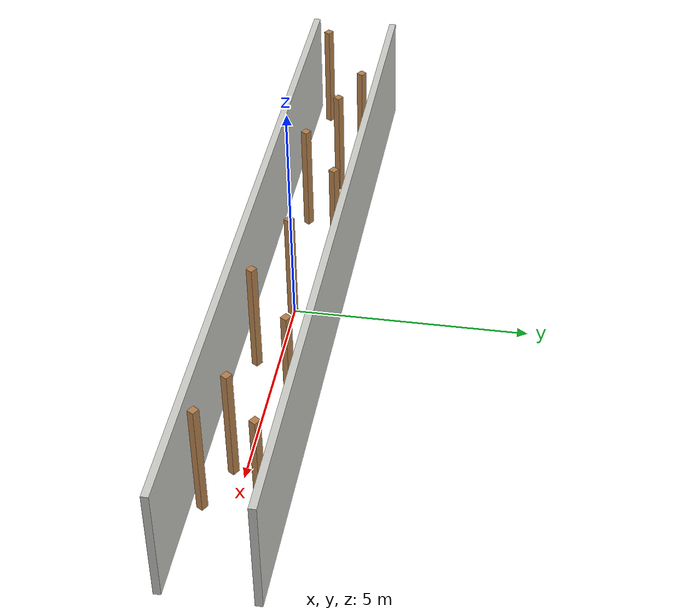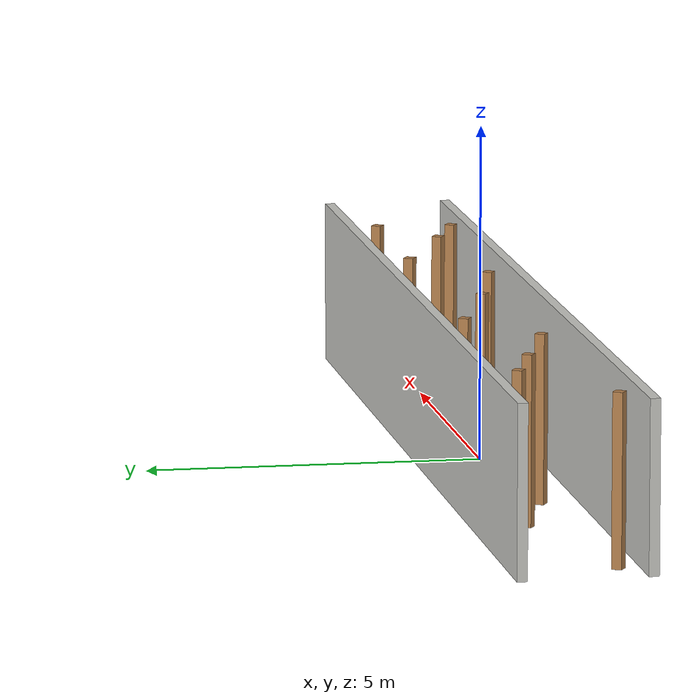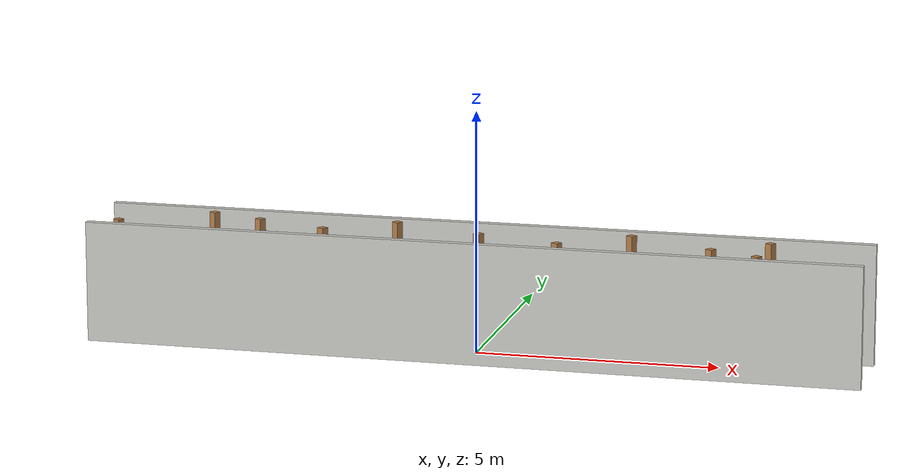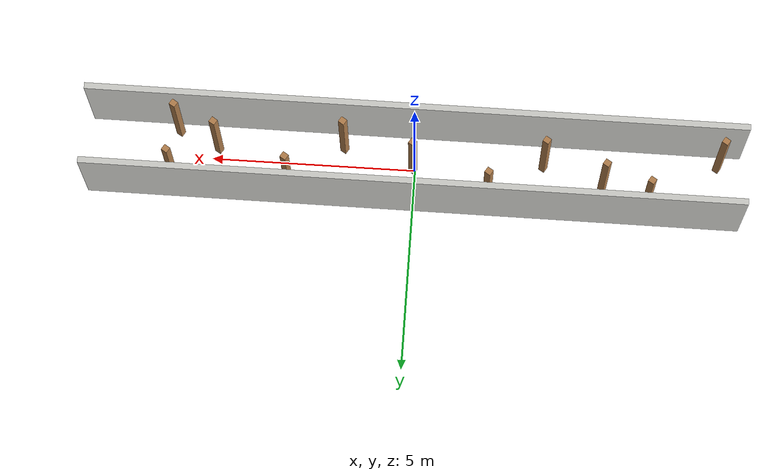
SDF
<?xml version='1.0'?>
<sdf version='1.6'>
  <model name='pole_2m'>
    <link name='Wall_0'>
      <pose frame=''>-0.007783 0.925 0 0 -0 0</pose>
      <self_collide>0</self_collide>
      <enable_wind>0</enable_wind>
      <kinematic>0</kinematic>
      <inertial>
        <inertia>
          <ixx>0</ixx>
          <ixy>0</ixy>
          <ixz>0</ixz>
          <iyy>0</iyy>
          <iyz>0</iyz>
          <izz>0</izz>
        </inertia>
        <mass>0</mass>
        <pose frame=''>0 0 0 0 -0 0</pose>
      </inertial>
      <visual name='Wall_0_Visual'>
        <pose frame=''>0 0 1.25 0 -0 0</pose>
        <geometry>
          <box>
            <size>16.0312 0.15 2.5</size>
          </box>
        </geometry>
        <material>
          <script>
            <uri>file://media/materials/scripts/gazebo.material</uri>
            <name>Gazebo/CeilingTiled</name>
          </script>
          <ambient>1 1 1 1</ambient>
          <shader type='pixel'/>
        </material>
        <meta>
          <layer>0</layer>
        </meta>
        <transparency>0</transparency>
        <cast_shadows>1</cast_shadows>
      </visual>
      <collision name='Wall_0_Collision'>
        <laser_retro>0</laser_retro>
        <max_contacts>10</max_contacts>
        <pose frame=''>0 0 1.25 0 -0 0</pose>
        <geometry>
          <box>
            <size>16.0312 0.15 2.5</size>
          </box>
        </geometry>
        <surface>
          <friction>
            <ode>
              <mu>1</mu>
              <mu2>1</mu2>
              <fdir1>0 0 0</fdir1>
              <slip1>0</slip1>
              <slip2>0</slip2>
            </ode>
            <torsional>
              <coefficient>1</coefficient>
              <patch_radius>0</patch_radius>
              <surface_radius>0</surface_radius>
              <use_patch_radius>1</use_patch_radius>
              <ode>
                <slip>0</slip>
              </ode>
            </torsional>
          </friction>
          <bounce>
            <restitution_coefficient>0</restitution_coefficient>
            <threshold>1e+06</threshold>
          </bounce>
          <contact>
            <collide_without_contact>0</collide_without_contact>
            <collide_without_contact_bitmask>1</collide_without_contact_bitmask>
            <collide_bitmask>1</collide_bitmask>
            <ode>
              <soft_cfm>0</soft_cfm>
              <soft_erp>0.2</soft_erp>
              <kp>1e+13</kp>
              <kd>1</kd>
              <max_vel>0.01</max_vel>
              <min_depth>0</min_depth>
            </ode>
            <bullet>
              <split_impulse>1</split_impulse>
              <split_impulse_penetration_threshold>-0.01</split_impulse_penetration_threshold>
              <soft_cfm>0</soft_cfm>
              <soft_erp>0.2</soft_erp>
              <kp>1e+13</kp>
              <kd>1</kd>
            </bullet>
          </contact>
        </surface>
      </collision>
    </link>
    <link name='Wall_2'>
      <pose frame=''>0.007783 -0.925 0 0 -0 3.14159</pose>
      <self_collide>0</self_collide>
      <enable_wind>0</enable_wind>
      <kinematic>0</kinematic>
      <inertial>
        <inertia>
          <ixx>0</ixx>
          <ixy>0</ixy>
          <ixz>0</ixz>
          <iyy>0</iyy>
          <iyz>0</iyz>
          <izz>0</izz>
        </inertia>
        <mass>0</mass>
        <pose frame=''>0 0 0 0 -0 0</pose>
      </inertial>
      <visual name='Wall_2_Visual'>
        <pose frame=''>0 0 1.25 0 -0 0</pose>
        <geometry>
          <box>
            <size>16.022 0.15 2.5</size>
          </box>
        </geometry>
        <material>
          <script>
            <uri>file://media/materials/scripts/gazebo.material</uri>
            <name>Gazebo/CeilingTiled</name>
          </script>
          <ambient>1 1 1 1</ambient>
          <shader type='pixel'/>
        </material>
        <meta>
          <layer>0</layer>
        </meta>
        <transparency>0</transparency>
        <cast_shadows>1</cast_shadows>
      </visual>
      <collision name='Wall_2_Collision'>
        <laser_retro>0</laser_retro>
        <max_contacts>10</max_contacts>
        <pose frame=''>0 0 1.25 0 -0 0</pose>
        <geometry>
          <box>
            <size>16.022 0.15 2.5</size>
          </box>
        </geometry>
        <surface>
          <friction>
            <ode>
              <mu>1</mu>
              <mu2>1</mu2>
              <fdir1>0 0 0</fdir1>
              <slip1>0</slip1>
              <slip2>0</slip2>
            </ode>
            <torsional>
              <coefficient>1</coefficient>
              <patch_radius>0</patch_radius>
              <surface_radius>0</surface_radius>
              <use_patch_radius>1</use_patch_radius>
              <ode>
                <slip>0</slip>
              </ode>
            </torsional>
          </friction>
          <bounce>
            <restitution_coefficient>0</restitution_coefficient>
            <threshold>1e+06</threshold>
          </bounce>
          <contact>
            <collide_without_contact>0</collide_without_contact>
            <collide_without_contact_bitmask>1</collide_without_contact_bitmask>
            <collide_bitmask>1</collide_bitmask>
            <ode>
              <soft_cfm>0</soft_cfm>
              <soft_erp>0.2</soft_erp>
              <kp>1e+13</kp>
              <kd>1</kd>
              <max_vel>0.01</max_vel>
              <min_depth>0</min_depth>
            </ode>
            <bullet>
              <split_impulse>1</split_impulse>
              <split_impulse_penetration_threshold>-0.01</split_impulse_penetration_threshold>
              <soft_cfm>0</soft_cfm>
              <soft_erp>0.2</soft_erp>
              <kp>1e+13</kp>
              <kd>1</kd>
            </bullet>
          </contact>
        </surface>
      </collision>
    </link>
    <link name='Wall_6'>
      <pose frame=''>-5.71878 0.5395 0 0 0 -0.558599</pose>
      <self_collide>0</self_collide>
      <enable_wind>0</enable_wind>
      <kinematic>0</kinematic>
      <visual name='Wall_6_Visual'>
        <pose frame=''>0 0 1.25 0 -0 0</pose>
        <geometry>
          <box>
            <size>0.16 0.15 2.5</size>
          </box>
        </geometry>
        <material>
          <script>
            <uri>file://media/materials/scripts/gazebo.material</uri>
            <name>Gazebo/Wood</name>
          </script>
          <ambient>1 1 1 1</ambient>
          <shader type='pixel'/>
        </material>
        <meta>
          <layer>0</layer>
        </meta>
        <transparency>0</transparency>
        <cast_shadows>1</cast_shadows>
      </visual>
      <collision name='Wall_6_Collision'>
        <laser_retro>0</laser_retro>
        <max_contacts>10</max_contacts>
        <pose frame=''>0 0 1.25 0 -0 0</pose>
        <geometry>
          <box>
            <size>0.16 0.15 2.5</size>
          </box>
        </geometry>
        <surface>
          <friction>
            <ode>
              <mu>1</mu>
              <mu2>1</mu2>
              <fdir1>0 0 0</fdir1>
              <slip1>0</slip1>
              <slip2>0</slip2>
            </ode>
            <torsional>
              <coefficient>1</coefficient>
              <patch_radius>0</patch_radius>
              <surface_radius>0</surface_radius>
              <use_patch_radius>1</use_patch_radius>
              <ode>
                <slip>0</slip>
              </ode>
            </torsional>
          </friction>
          <bounce>
            <restitution_coefficient>0</restitution_coefficient>
            <threshold>1e+06</threshold>
          </bounce>
          <contact>
            <collide_without_contact>0</collide_without_contact>
            <collide_without_contact_bitmask>1</collide_without_contact_bitmask>
            <collide_bitmask>1</collide_bitmask>
            <ode>
              <soft_cfm>0</soft_cfm>
              <soft_erp>0.2</soft_erp>
              <kp>1e+13</kp>
              <kd>1</kd>
              <max_vel>0.01</max_vel>
              <min_depth>0</min_depth>
            </ode>
            <bullet>
              <split_impulse>1</split_impulse>
              <split_impulse_penetration_threshold>-0.01</split_impulse_penetration_threshold>
              <soft_cfm>0</soft_cfm>
              <soft_erp>0.2</soft_erp>
              <kp>1e+13</kp>
              <kd>1</kd>
            </bullet>
          </contact>
        </surface>
      </collision>
    </link>
    <link name='Wall_6_clone'>
      <pose frame=''>-3.15849 -0.287445 0 0 0 -0.558599</pose>
      <self_collide>0</self_collide>
      <enable_wind>0</enable_wind>
      <kinematic>0</kinematic>
      <visual name='Wall_6_Visual'>
        <pose frame=''>0 0 1.25 0 -0 0</pose>
        <geometry>
          <box>
            <size>0.16 0.15 2.5</size>
          </box>
        </geometry>
        <material>
          <script>
            <uri>file://media/materials/scripts/gazebo.material</uri>
            <name>Gazebo/Wood</name>
          </script>
          <ambient>1 1 1 1</ambient>
          <shader type='pixel'/>
        </material>
        <meta>
          <layer>0</layer>
        </meta>
        <transparency>0</transparency>
        <cast_shadows>1</cast_shadows>
      </visual>
      <collision name='Wall_6_Collision'>
        <laser_retro>0</laser_retro>
        <max_contacts>10</max_contacts>
        <pose frame=''>0 0 1.25 0 -0 0</pose>
        <geometry>
          <box>
            <size>0.16 0.15 2.5</size>
          </box>
        </geometry>
        <surface>
          <friction>
            <ode>
              <mu>1</mu>
              <mu2>1</mu2>
              <fdir1>0 0 0</fdir1>
              <slip1>0</slip1>
              <slip2>0</slip2>
            </ode>
            <torsional>
              <coefficient>1</coefficient>
              <patch_radius>0</patch_radius>
              <surface_radius>0</surface_radius>
              <use_patch_radius>1</use_patch_radius>
              <ode>
                <slip>0</slip>
              </ode>
            </torsional>
          </friction>
          <bounce>
            <restitution_coefficient>0</restitution_coefficient>
            <threshold>1e+06</threshold>
          </bounce>
          <contact>
            <collide_without_contact>0</collide_without_contact>
            <collide_without_contact_bitmask>1</collide_without_contact_bitmask>
            <collide_bitmask>1</collide_bitmask>
            <ode>
              <soft_cfm>0</soft_cfm>
              <soft_erp>0.2</soft_erp>
              <kp>1e+13</kp>
              <kd>1</kd>
              <max_vel>0.01</max_vel>
              <min_depth>0</min_depth>
            </ode>
            <bullet>
              <split_impulse>1</split_impulse>
              <split_impulse_penetration_threshold>-0.01</split_impulse_penetration_threshold>
              <soft_cfm>0</soft_cfm>
              <soft_erp>0.2</soft_erp>
              <kp>1e+13</kp>
              <kd>1</kd>
            </bullet>
          </contact>
        </surface>
      </collision>
    </link>
    <link name='Wall_6_clone_0'>
      <pose frame=''>-1.81482 0.574676 0 0 0 -0.558599</pose>
      <self_collide>0</self_collide>
      <enable_wind>0</enable_wind>
      <kinematic>0</kinematic>
      <visual name='Wall_6_Visual'>
        <pose frame=''>0 0 1.25 0 -0 0</pose>
        <geometry>
          <box>
            <size>0.16 0.15 2.5</size>
          </box>
        </geometry>
        <material>
          <script>
            <uri>file://media/materials/scripts/gazebo.material</uri>
            <name>Gazebo/Wood</name>
          </script>
          <ambient>1 1 1 1</ambient>
          <shader type='pixel'/>
        </material>
        <meta>
          <layer>0</layer>
        </meta>
        <transparency>0</transparency>
        <cast_shadows>1</cast_shadows>
      </visual>
      <collision name='Wall_6_Collision'>
        <laser_retro>0</laser_retro>
        <max_contacts>10</max_contacts>
        <pose frame=''>0 0 1.25 0 -0 0</pose>
        <geometry>
          <box>
            <size>0.16 0.15 2.5</size>
          </box>
        </geometry>
        <surface>
          <friction>
            <ode>
              <mu>1</mu>
              <mu2>1</mu2>
              <fdir1>0 0 0</fdir1>
              <slip1>0</slip1>
              <slip2>0</slip2>
            </ode>
            <torsional>
              <coefficient>1</coefficient>
              <patch_radius>0</patch_radius>
              <surface_radius>0</surface_radius>
              <use_patch_radius>1</use_patch_radius>
              <ode>
                <slip>0</slip>
              </ode>
            </torsional>
          </friction>
          <bounce>
            <restitution_coefficient>0</restitution_coefficient>
            <threshold>1e+06</threshold>
          </bounce>
          <contact>
            <collide_without_contact>0</collide_without_contact>
            <collide_without_contact_bitmask>1</collide_without_contact_bitmask>
            <collide_bitmask>1</collide_bitmask>
            <ode>
              <soft_cfm>0</soft_cfm>
              <soft_erp>0.2</soft_erp>
              <kp>1e+13</kp>
              <kd>1</kd>
              <max_vel>0.01</max_vel>
              <min_depth>0</min_depth>
            </ode>
            <bullet>
              <split_impulse>1</split_impulse>
              <split_impulse_penetration_threshold>-0.01</split_impulse_penetration_threshold>
              <soft_cfm>0</soft_cfm>
              <soft_erp>0.2</soft_erp>
              <kp>1e+13</kp>
              <kd>1</kd>
            </bullet>
          </contact>
        </surface>
      </collision>
    </link>
    <link name='Wall_6_clone_1'>
      <pose frame=''>0.047996 -0.029844 0 0 0 -0.558599</pose>
      <self_collide>0</self_collide>
      <enable_wind>0</enable_wind>
      <kinematic>0</kinematic>
      <visual name='Wall_6_Visual'>
        <pose frame=''>0 0 1.25 0 -0 0</pose>
        <geometry>
          <box>
            <size>0.16 0.15 2.5</size>
          </box>
        </geometry>
        <material>
          <script>
            <uri>file://media/materials/scripts/gazebo.material</uri>
            <name>Gazebo/Wood</name>
          </script>
          <ambient>1 1 1 1</ambient>
          <shader type='pixel'/>
        </material>
        <meta>
          <layer>0</layer>
        </meta>
        <transparency>0</transparency>
        <cast_shadows>1</cast_shadows>
      </visual>
      <collision name='Wall_6_Collision'>
        <laser_retro>0</laser_retro>
        <max_contacts>10</max_contacts>
        <pose frame=''>0 0 1.25 0 -0 0</pose>
        <geometry>
          <box>
            <size>0.16 0.15 2.5</size>
          </box>
        </geometry>
        <surface>
          <friction>
            <ode>
              <mu>1</mu>
              <mu2>1</mu2>
              <fdir1>0 0 0</fdir1>
              <slip1>0</slip1>
              <slip2>0</slip2>
            </ode>
            <torsional>
              <coefficient>1</coefficient>
              <patch_radius>0</patch_radius>
              <surface_radius>0</surface_radius>
              <use_patch_radius>1</use_patch_radius>
              <ode>
                <slip>0</slip>
              </ode>
            </torsional>
          </friction>
          <bounce>
            <restitution_coefficient>0</restitution_coefficient>
            <threshold>1e+06</threshold>
          </bounce>
          <contact>
            <collide_without_contact>0</collide_without_contact>
            <collide_without_contact_bitmask>1</collide_without_contact_bitmask>
            <collide_bitmask>1</collide_bitmask>
            <ode>
              <soft_cfm>0</soft_cfm>
              <soft_erp>0.2</soft_erp>
              <kp>1e+13</kp>
              <kd>1</kd>
              <max_vel>0.01</max_vel>
              <min_depth>0</min_depth>
            </ode>
            <bullet>
              <split_impulse>1</split_impulse>
              <split_impulse_penetration_threshold>-0.01</split_impulse_penetration_threshold>
              <soft_cfm>0</soft_cfm>
              <soft_erp>0.2</soft_erp>
              <kp>1e+13</kp>
              <kd>1</kd>
            </bullet>
          </contact>
        </surface>
      </collision>
    </link>
    <link name='Wall_6_clone_2'>
      <pose frame=''>1.75896 -0.448581 0 0 0 -0.558599</pose>
      <self_collide>0</self_collide>
      <enable_wind>0</enable_wind>
      <kinematic>0</kinematic>
      <visual name='Wall_6_Visual'>
        <pose frame=''>0 0 1.25 0 -0 0</pose>
        <geometry>
          <box>
            <size>0.16 0.15 2.5</size>
          </box>
        </geometry>
        <material>
          <script>
            <uri>file://media/materials/scripts/gazebo.material</uri>
            <name>Gazebo/Wood</name>
          </script>
          <ambient>1 1 1 1</ambient>
          <shader type='pixel'/>
        </material>
        <meta>
          <layer>0</layer>
        </meta>
        <transparency>0</transparency>
        <cast_shadows>1</cast_shadows>
      </visual>
      <collision name='Wall_6_Collision'>
        <laser_retro>0</laser_retro>
        <max_contacts>10</max_contacts>
        <pose frame=''>0 0 1.25 0 -0 0</pose>
        <geometry>
          <box>
            <size>0.16 0.15 2.5</size>
          </box>
        </geometry>
        <surface>
          <friction>
            <ode>
              <mu>1</mu>
              <mu2>1</mu2>
              <fdir1>0 0 0</fdir1>
              <slip1>0</slip1>
              <slip2>0</slip2>
            </ode>
            <torsional>
              <coefficient>1</coefficient>
              <patch_radius>0</patch_radius>
              <surface_radius>0</surface_radius>
              <use_patch_radius>1</use_patch_radius>
              <ode>
                <slip>0</slip>
              </ode>
            </torsional>
          </friction>
          <bounce>
            <restitution_coefficient>0</restitution_coefficient>
            <threshold>1e+06</threshold>
          </bounce>
          <contact>
            <collide_without_contact>0</collide_without_contact>
            <collide_without_contact_bitmask>1</collide_without_contact_bitmask>
            <collide_bitmask>1</collide_bitmask>
            <ode>
              <soft_cfm>0</soft_cfm>
              <soft_erp>0.2</soft_erp>
              <kp>1e+13</kp>
              <kd>1</kd>
              <max_vel>0.01</max_vel>
              <min_depth>0</min_depth>
            </ode>
            <bullet>
              <split_impulse>1</split_impulse>
              <split_impulse_penetration_threshold>-0.01</split_impulse_penetration_threshold>
              <soft_cfm>0</soft_cfm>
              <soft_erp>0.2</soft_erp>
              <kp>1e+13</kp>
              <kd>1</kd>
            </bullet>
          </contact>
        </surface>
      </collision>
    </link>
    <link name='Wall_6_clone_3'>
      <pose frame=''>3.08943 0.513137 0 0 0 -0.558599</pose>
      <self_collide>0</self_collide>
      <enable_wind>0</enable_wind>
      <kinematic>0</kinematic>
      <visual name='Wall_6_Visual'>
        <pose frame=''>0 0 1.25 0 -0 0</pose>
        <geometry>
          <box>
            <size>0.16 0.15 2.5</size>
          </box>
        </geometry>
        <material>
          <script>
            <uri>file://media/materials/scripts/gazebo.material</uri>
            <name>Gazebo/Wood</name>
          </script>
          <ambient>1 1 1 1</ambient>
          <shader type='pixel'/>
        </material>
        <meta>
          <layer>0</layer>
        </meta>
        <transparency>0</transparency>
        <cast_shadows>1</cast_shadows>
      </visual>
      <collision name='Wall_6_Collision'>
        <laser_retro>0</laser_retro>
        <max_contacts>10</max_contacts>
        <pose frame=''>0 0 1.25 0 -0 0</pose>
        <geometry>
          <box>
            <size>0.16 0.15 2.5</size>
          </box>
        </geometry>
        <surface>
          <friction>
            <ode>
              <mu>1</mu>
              <mu2>1</mu2>
              <fdir1>0 0 0</fdir1>
              <slip1>0</slip1>
              <slip2>0</slip2>
            </ode>
            <torsional>
              <coefficient>1</coefficient>
              <patch_radius>0</patch_radius>
              <surface_radius>0</surface_radius>
              <use_patch_radius>1</use_patch_radius>
              <ode>
                <slip>0</slip>
              </ode>
            </torsional>
          </friction>
          <bounce>
            <restitution_coefficient>0</restitution_coefficient>
            <threshold>1e+06</threshold>
          </bounce>
          <contact>
            <collide_without_contact>0</collide_without_contact>
            <collide_without_contact_bitmask>1</collide_without_contact_bitmask>
            <collide_bitmask>1</collide_bitmask>
            <ode>
              <soft_cfm>0</soft_cfm>
              <soft_erp>0.2</soft_erp>
              <kp>1e+13</kp>
              <kd>1</kd>
              <max_vel>0.01</max_vel>
              <min_depth>0</min_depth>
            </ode>
            <bullet>
              <split_impulse>1</split_impulse>
              <split_impulse_penetration_threshold>-0.01</split_impulse_penetration_threshold>
              <soft_cfm>0</soft_cfm>
              <soft_erp>0.2</soft_erp>
              <kp>1e+13</kp>
              <kd>1</kd>
            </bullet>
          </contact>
        </surface>
      </collision>
    </link>
    <link name='Wall_6_clone_4'>
      <pose frame=''>4.85406 -0.243061 0 0 0 -0.558599</pose>
      <self_collide>0</self_collide>
      <enable_wind>0</enable_wind>
      <kinematic>0</kinematic>
      <visual name='Wall_6_Visual'>
        <pose frame=''>0 0 1.25 0 -0 0</pose>
        <geometry>
          <box>
            <size>0.16 0.15 2.5</size>
          </box>
        </geometry>
        <material>
          <script>
            <uri>file://media/materials/scripts/gazebo.material</uri>
            <name>Gazebo/Wood</name>
          </script>
          <ambient>1 1 1 1</ambient>
          <shader type='pixel'/>
        </material>
        <meta>
          <layer>0</layer>
        </meta>
        <transparency>0</transparency>
        <cast_shadows>1</cast_shadows>
      </visual>
      <collision name='Wall_6_Collision'>
        <laser_retro>0</laser_retro>
        <max_contacts>10</max_contacts>
        <pose frame=''>0 0 1.25 0 -0 0</pose>
        <geometry>
          <box>
            <size>0.16 0.15 2.5</size>
          </box>
        </geometry>
        <surface>
          <friction>
            <ode>
              <mu>1</mu>
              <mu2>1</mu2>
              <fdir1>0 0 0</fdir1>
              <slip1>0</slip1>
              <slip2>0</slip2>
            </ode>
            <torsional>
              <coefficient>1</coefficient>
              <patch_radius>0</patch_radius>
              <surface_radius>0</surface_radius>
              <use_patch_radius>1</use_patch_radius>
              <ode>
                <slip>0</slip>
              </ode>
            </torsional>
          </friction>
          <bounce>
            <restitution_coefficient>0</restitution_coefficient>
            <threshold>1e+06</threshold>
          </bounce>
          <contact>
            <collide_without_contact>0</collide_without_contact>
            <collide_without_contact_bitmask>1</collide_without_contact_bitmask>
            <collide_bitmask>1</collide_bitmask>
            <ode>
              <soft_cfm>0</soft_cfm>
              <soft_erp>0.2</soft_erp>
              <kp>1e+13</kp>
              <kd>1</kd>
              <max_vel>0.01</max_vel>
              <min_depth>0</min_depth>
            </ode>
            <bullet>
              <split_impulse>1</split_impulse>
              <split_impulse_penetration_threshold>-0.01</split_impulse_penetration_threshold>
              <soft_cfm>0</soft_cfm>
              <soft_erp>0.2</soft_erp>
              <kp>1e+13</kp>
              <kd>1</kd>
            </bullet>
          </contact>
        </surface>
      </collision>
    </link>
    <link name='Wall_6_clone_5'>
      <pose frame=''>5.92825 0.520399 0 0 0 -0.558599</pose>
      <self_collide>0</self_collide>
      <enable_wind>0</enable_wind>
      <kinematic>0</kinematic>
      <visual name='Wall_6_Visual'>
        <pose frame=''>0 0 1.25 0 -0 0</pose>
        <geometry>
          <box>
            <size>0.16 0.15 2.5</size>
          </box>
        </geometry>
        <material>
          <script>
            <uri>file://media/materials/scripts/gazebo.material</uri>
            <name>Gazebo/Wood</name>
          </script>
          <ambient>1 1 1 1</ambient>
          <shader type='pixel'/>
        </material>
        <meta>
          <layer>0</layer>
        </meta>
        <transparency>0</transparency>
        <cast_shadows>1</cast_shadows>
      </visual>
      <collision name='Wall_6_Collision'>
        <laser_retro>0</laser_retro>
        <max_contacts>10</max_contacts>
        <pose frame=''>0 0 1.25 0 -0 0</pose>
        <geometry>
          <box>
            <size>0.16 0.15 2.5</size>
          </box>
        </geometry>
        <surface>
          <friction>
            <ode>
              <mu>1</mu>
              <mu2>1</mu2>
              <fdir1>0 0 0</fdir1>
              <slip1>0</slip1>
              <slip2>0</slip2>
            </ode>
            <torsional>
              <coefficient>1</coefficient>
              <patch_radius>0</patch_radius>
              <surface_radius>0</surface_radius>
              <use_patch_radius>1</use_patch_radius>
              <ode>
                <slip>0</slip>
              </ode>
            </torsional>
          </friction>
          <bounce>
            <restitution_coefficient>0</restitution_coefficient>
            <threshold>1e+06</threshold>
          </bounce>
          <contact>
            <collide_without_contact>0</collide_without_contact>
            <collide_without_contact_bitmask>1</collide_without_contact_bitmask>
            <collide_bitmask>1</collide_bitmask>
            <ode>
              <soft_cfm>0</soft_cfm>
              <soft_erp>0.2</soft_erp>
              <kp>1e+13</kp>
              <kd>1</kd>
              <max_vel>0.01</max_vel>
              <min_depth>0</min_depth>
            </ode>
            <bullet>
              <split_impulse>1</split_impulse>
              <split_impulse_penetration_threshold>-0.01</split_impulse_penetration_threshold>
              <soft_cfm>0</soft_cfm>
              <soft_erp>0.2</soft_erp>
              <kp>1e+13</kp>
              <kd>1</kd>
            </bullet>
          </contact>
        </surface>
      </collision>
    </link>
    <link name='Wall_6_clone_6'>
      <pose frame=''>-7.43919 -0.539254 0 0 0 -0.558599</pose>
      <self_collide>0</self_collide>
      <enable_wind>0</enable_wind>
      <kinematic>0</kinematic>
      <visual name='Wall_6_Visual'>
        <pose frame=''>0 0 1.25 0 -0 0</pose>
        <geometry>
          <box>
            <size>0.16 0.15 2.5</size>
          </box>
        </geometry>
        <material>
          <script>
            <uri>file://media/materials/scripts/gazebo.material</uri>
            <name>Gazebo/Wood</name>
          </script>
          <ambient>1 1 1 1</ambient>
          <shader type='pixel'/>
        </material>
        <meta>
          <layer>0</layer>
        </meta>
        <transparency>0</transparency>
        <cast_shadows>1</cast_shadows>
      </visual>
      <collision name='Wall_6_Collision'>
        <laser_retro>0</laser_retro>
        <max_contacts>10</max_contacts>
        <pose frame=''>0 0 1.25 0 -0 0</pose>
        <geometry>
          <box>
            <size>0.16 0.15 2.5</size>
          </box>
        </geometry>
        <surface>
          <friction>
            <ode>
              <mu>1</mu>
              <mu2>1</mu2>
              <fdir1>0 0 0</fdir1>
              <slip1>0</slip1>
              <slip2>0</slip2>
            </ode>
            <torsional>
              <coefficient>1</coefficient>
              <patch_radius>0</patch_radius>
              <surface_radius>0</surface_radius>
              <use_patch_radius>1</use_patch_radius>
              <ode>
                <slip>0</slip>
              </ode>
            </torsional>
          </friction>
          <bounce>
            <restitution_coefficient>0</restitution_coefficient>
            <threshold>1e+06</threshold>
          </bounce>
          <contact>
            <collide_without_contact>0</collide_without_contact>
            <collide_without_contact_bitmask>1</collide_without_contact_bitmask>
            <collide_bitmask>1</collide_bitmask>
            <ode>
              <soft_cfm>0</soft_cfm>
              <soft_erp>0.2</soft_erp>
              <kp>1e+13</kp>
              <kd>1</kd>
              <max_vel>0.01</max_vel>
              <min_depth>0</min_depth>
            </ode>
            <bullet>
              <split_impulse>1</split_impulse>
              <split_impulse_penetration_threshold>-0.01</split_impulse_penetration_threshold>
              <soft_cfm>0</soft_cfm>
              <soft_erp>0.2</soft_erp>
              <kp>1e+13</kp>
              <kd>1</kd>
            </bullet>
          </contact>
        </surface>
      </collision>
    </link>
    <link name='Wall_6_clone_7'>
      <pose frame=''>5.84024 -0.624639 0 0 0 -0.558599</pose>
      <self_collide>0</self_collide>
      <enable_wind>0</enable_wind>
      <kinematic>0</kinematic>
      <visual name='Wall_6_Visual'>
        <pose frame=''>0 0 1.25 0 -0 0</pose>
        <geometry>
          <box>
            <size>0.16 0.15 2.5</size>
          </box>
        </geometry>
        <material>
          <script>
            <uri>file://media/materials/scripts/gazebo.material</uri>
            <name>Gazebo/Wood</name>
          </script>
          <ambient>1 1 1 1</ambient>
          <shader type='pixel'/>
        </material>
        <meta>
          <layer>0</layer>
        </meta>
        <transparency>0</transparency>
        <cast_shadows>1</cast_shadows>
      </visual>
      <collision name='Wall_6_Collision'>
        <laser_retro>0</laser_retro>
        <max_contacts>10</max_contacts>
        <pose frame=''>0 0 1.25 0 -0 0</pose>
        <geometry>
          <box>
            <size>0.16 0.15 2.5</size>
          </box>
        </geometry>
        <surface>
          <friction>
            <ode>
              <mu>1</mu>
              <mu2>1</mu2>
              <fdir1>0 0 0</fdir1>
              <slip1>0</slip1>
              <slip2>0</slip2>
            </ode>
            <torsional>
              <coefficient>1</coefficient>
              <patch_radius>0</patch_radius>
              <surface_radius>0</surface_radius>
              <use_patch_radius>1</use_patch_radius>
              <ode>
                <slip>0</slip>
              </ode>
            </torsional>
          </friction>
          <bounce>
            <restitution_coefficient>0</restitution_coefficient>
            <threshold>1e+06</threshold>
          </bounce>
          <contact>
            <collide_without_contact>0</collide_without_contact>
            <collide_without_contact_bitmask>1</collide_without_contact_bitmask>
            <collide_bitmask>1</collide_bitmask>
            <ode>
              <soft_cfm>0</soft_cfm>
              <soft_erp>0.2</soft_erp>
              <kp>1e+13</kp>
              <kd>1</kd>
              <max_vel>0.01</max_vel>
              <min_depth>0</min_depth>
            </ode>
            <bullet>
              <split_impulse>1</split_impulse>
              <split_impulse_penetration_threshold>-0.01</split_impulse_penetration_threshold>
              <soft_cfm>0</soft_cfm>
              <soft_erp>0.2</soft_erp>
              <kp>1e+13</kp>
              <kd>1</kd>
            </bullet>
          </contact>
        </surface>
      </collision>
    </link>
    <link name='Wall_6_clone_8'>
      <pose frame=''>-4.62403 0.184371 0 0 0 -0.558599</pose>
      <self_collide>0</self_collide>
      <enable_wind>0</enable_wind>
      <kinematic>0</kinematic>
      <visual name='Wall_6_Visual'>
        <pose frame=''>0 0 1.25 0 -0 0</pose>
        <geometry>
          <box>
            <size>0.16 0.15 2.5</size>
          </box>
        </geometry>
        <material>
          <script>
            <uri>file://media/materials/scripts/gazebo.material</uri>
            <name>Gazebo/Wood</name>
          </script>
          <ambient>1 1 1 1</ambient>
          <shader type='pixel'/>
        </material>
        <meta>
          <layer>0</layer>
        </meta>
        <transparency>0</transparency>
        <cast_shadows>1</cast_shadows>
      </visual>
      <collision name='Wall_6_Collision'>
        <laser_retro>0</laser_retro>
        <max_contacts>10</max_contacts>
        <pose frame=''>0 0 1.25 0 -0 0</pose>
        <geometry>
          <box>
            <size>0.16 0.15 2.5</size>
          </box>
        </geometry>
        <surface>
          <friction>
            <ode>
              <mu>1</mu>
              <mu2>1</mu2>
              <fdir1>0 0 0</fdir1>
              <slip1>0</slip1>
              <slip2>0</slip2>
            </ode>
            <torsional>
              <coefficient>1</coefficient>
              <patch_radius>0</patch_radius>
              <surface_radius>0</surface_radius>
              <use_patch_radius>1</use_patch_radius>
              <ode>
                <slip>0</slip>
              </ode>
            </torsional>
          </friction>
          <bounce>
            <restitution_coefficient>0</restitution_coefficient>
            <threshold>1e+06</threshold>
          </bounce>
          <contact>
            <collide_without_contact>0</collide_without_contact>
            <collide_without_contact_bitmask>1</collide_without_contact_bitmask>
            <collide_bitmask>1</collide_bitmask>
            <ode>
              <soft_cfm>0</soft_cfm>
              <soft_erp>0.2</soft_erp>
              <kp>1e+13</kp>
              <kd>1</kd>
              <max_vel>0.01</max_vel>
              <min_depth>0</min_depth>
            </ode>
            <bullet>
              <split_impulse>1</split_impulse>
              <split_impulse_penetration_threshold>-0.01</split_impulse_penetration_threshold>
              <soft_cfm>0</soft_cfm>
              <soft_erp>0.2</soft_erp>
              <kp>1e+13</kp>
              <kd>1</kd>
            </bullet>
          </contact>
        </surface>
      </collision>
    </link>
    <static>1</static>
    <allow_auto_disable>1</allow_auto_disable>
  </model>
</sdf>
